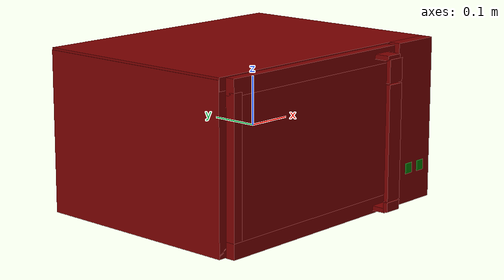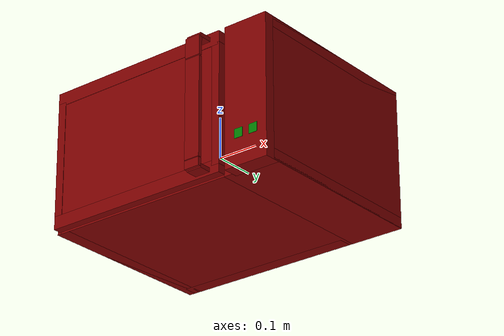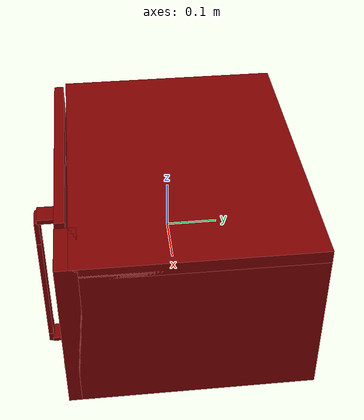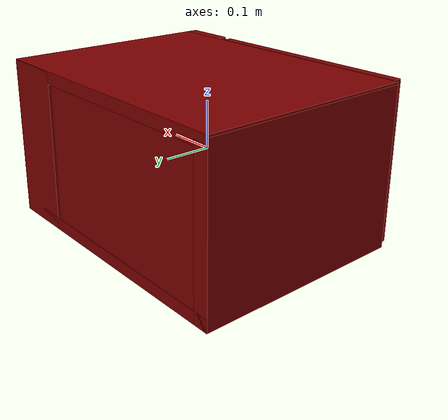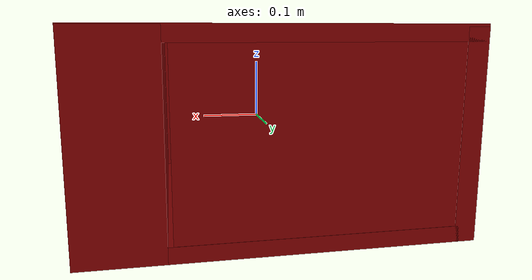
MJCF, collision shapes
<?xml version='1.0' encoding='UTF-8'?>
<mujoco model="model">
  <option timestep="0.002" gravity="0.0 0.0 -9.81"/>
  <compiler angle="radian"/>
  <asset>
    <mesh file="visuals/door.obj" name="door_vis"/>
    <mesh file="visuals/door_Clear.obj" name="door_Clear_vis"/>
    <mesh file="visuals/Body001.obj" name="Body001_vis"/>
    <mesh file="visuals/Disc001.obj" name="Disc001_vis"/>
    <texture file="visuals/T_BC001.png" name="Body001_material" type="2d"/>
    <material name="Body001_material" rgba="1 1 1 1.0" texture="Body001_material" shininess="1" specular="1"/>
    <texture file="visuals/T_BC001.png" name="door_material" type="2d"/>
    <material name="door_material" rgba="1 1 1 1.0" texture="door_material" shininess="1" specular="1"/>
    <texture file="visuals/T_BC001.png" name="door_Clear_material" type="2d"/>
    <material name="door_Clear_material" rgba="1 1 1 0.75" texture="door_Clear_material" shininess="0.2512328028678894" specular="0.3103448502657381"/>
    <texture file="visuals/T_BC001.png" name="Disc001_material" type="2d"/>
    <material name="Disc001_material" rgba="1 1 1 1.0" texture="Disc001_material" shininess="0.5" specular="0.5"/>
  </asset>
  <default>
    <default class="visual">
      <geom conaffinity="0" contype="0" group="1" type="mesh"/>
    </default>
    <default class="collision">
      <geom group="0" rgba="0.5 0 0 0.5"/>
    </default>
    <default class="spawn">
      <geom group="0" rgba="1 1 1 0.5" contype="0" conaffinity="0"/>
      <site group="0" rgba="1 1 1 0.5"/>
    </default>
    <default class="region">
      <geom group="1" conaffinity="0" contype="0" rgba="0 1 0 0"/>
    </default>
  </default>
  <worldbody>
    <body>
      <body name="object">
        <geom class="collision" type="box" pos="0.26886290 -0.22100414 -0.09540475" size="0.010876283049583435 0.0004979527438990772 0.010797453112900257" quat="1.0 0.0 0.0 0.0" name="start_button" rgba="0.0 0.5 0 0.5"/>
        <geom class="collision" type="box" pos="0.23078033 -0.22100414 -0.09497277" size="0.010778550058603287 0.0004949670983478427 0.010775938630104065" quat="1.0 0.0 0.0 0.0" name="stop_button" rgba="0.0 0.5 0 0.5"/>
        <geom class="collision" type="cylinder" pos="-0.04945516 0.01560051 -0.13233270" size="0.1811605840921402 0.0011734063737094402" quat="1.0 0.0 0.0 0.0" name="tray" rgba="0 1 0 0.5"/>
        <geom mesh="Body001_vis" type="mesh" solimp="0.998 0.998 0.001" solref="0.001 1" friction="0.95 0.3 0.1" class="visual" material="Body001_material"/>
        <geom class="collision" type="box" pos="-0.28583077 0.03089763 -0.00228121" size="0.016901511698961258 0.2250843644142151 0.16554179787635803" quat="1.0 0.0 0.0 0.0"/>
        <geom class="collision" type="box" pos="0.23694518 0.03089764 -0.00061248" size="0.06578709930181503 0.2250843644142151 0.16721045970916748" quat="1.0 0.0 0.0 0.0"/>
        <geom class="collision" type="box" pos="0.00030022 0.03089763 0.15500790" size="0.3024320602416992 0.2250843644142151 0.012815229594707489" quat="1.0 0.0 0.0 0.0"/>
        <geom class="collision" type="box" pos="0.00030022 0.03089763 -0.15489802" size="0.3024320602416992 0.2250843644142151 0.012924929149448872" quat="1.0 0.0 0.0 0.0"/>
        <geom class="collision" type="box" pos="0.24769089 -0.19889010 0.00000003" size="0.055041395127773285 0.02009808085858822 0.16782304644584656" quat="1.0 0.0 0.0 0.0"/>
        <geom class="collision" type="box" pos="-0.06188840 0.23836537 -0.00228122" size="0.016901511698961258 0.2250843644142151 0.16554179787635803" quat="0.7071068286895752 0.0 0.0 -0.7071067094802856"/>
        <body name="door">
          <joint axis="0.0 0.0 1.0" pos="-0.28924674 -0.20665190 -0.00025728" limited="true" name="microjoint" range="-1.5707963267948966 0.0" type="hinge" damping="1" frictionloss="1" armature=".01" stiffness="0.05"/>
          <geom mesh="door_vis" type="mesh" solimp="0.998 0.998 0.001" solref="0.001 1" friction="0.95 0.3 0.1" class="visual" material="door_material"/>
          <geom class="collision" type="box" pos="-0.05539873 -0.21148932 0.00030119" size="0.20943863689899445 0.0022145546972751617 0.13125666975975037" quat="1.0 0.0 0.0 0.0"/>
          <geom class="collision" type="box" pos="-0.05670168 -0.20927480 0.15091729" size="0.23352432250976562 0.00971329864114523 0.016166234388947487" quat="1.0 0.0 0.0 0.0"/>
          <geom class="collision" type="box" pos="-0.05670168 -0.20927480 -0.15110295" size="0.23352432250976562 0.00971329864114523 0.01549109909683466" quat="1.0 0.0 0.0 0.0"/>
          <geom class="collision" type="box" pos="0.16707136 -0.20927480 -0.00343810" size="0.00981630478054285 0.00971329864114523 0.14392904937267303" quat="1.0 0.0 0.0 0.0"/>
          <geom class="collision" type="box" pos="-0.27970296 -0.20927480 -0.00137535" size="0.010523008182644844 0.00971329864114523 0.14233620464801788" quat="1.0 0.0 0.0 0.0"/>
          <geom class="collision" type="box" pos="0.13395572 -0.25117895 -0.14798586" size="0.01917259767651558 0.004803053569048643 0.009773798286914825" quat="1.0 0.0 0.0 0.0"/>
          <geom class="collision" type="box" pos="0.13395570 -0.25151581 0.12639284" size="0.01917259767651558 0.00446621747687459 0.023682648316025734" quat="1.0 0.0 0.0 0.0"/>
          <geom class="collision" type="box" pos="0.13395566 -0.23338032 0.15202446" size="0.01917262002825737 0.017437011003494263 0.004819198045879602" quat="1.0 0.0 0.0 0.0"/>
          <geom class="collision" type="box" pos="0.13423698 -0.23224500 -0.15573693" size="0.01895139180123806 0.016301777213811874 0.00469950819388032" quat="1.0 0.0 0.0 0.0"/>
          <geom class="collision" type="box" pos="0.13395572 -0.25151506 -0.01817428" size="0.01917264796793461 0.0044672382064163685 0.11811789125204086" quat="1.0 0.0 0.0 0.0" name="door_handle_main"/>
          <geom class="collision" type="box" pos="-0.05539873 -0.21561125 0.00030119" size="0.22794562578201294 0.0022145546972751617 0.1607520580291748" quat="1.0 0.0 0.0 0.0" name="door_main"/>
          <body name="door_Clear">
            <geom mesh="door_Clear_vis" type="mesh" solimp="0.998 0.998 0.001" solref="0.001 1" friction="0.95 0.3 0.1" class="visual" material="door_Clear_material"/>
            <geom class="collision" type="box" pos="-0.05539873 -0.21148932 0.00030119" size="0.20943863689899445 0.0022145546972751617 0.13125666975975037" quat="1.0 0.0 0.0 0.0"/>
          </body>
        </body>
        <body name="Disc001">
          <joint axis="0.0 0.0 1.0" pos="-0.04863029 0.01558806 -0.13602901" limited="false" name="Disc001_joint" range="0 360" type="hinge" damping="1" frictionloss="1" armature=".01" stiffness="0.05"/>
          <geom mesh="Disc001_vis" type="mesh" solimp="0.998 0.998 0.001" solref="0.001 1" friction="0.95 0.3 0.1" class="visual" material="Disc001_material"/>
          <geom class="collision" type="cylinder" pos="-0.04688514 0.01612883 -0.13734661" size="0.18033765256404877 0.0026822981890290976" quat="1.0 0.0 0.0 0.0"/>
        </body>
        <geom class="region" name="reg_int" type="box" pos="-0.04836992 0.013671780000000008 0.001949270000000003" size="0.21390253999999997 0.20144119 0.1341085"/>
        <geom class="region" name="reg_main" type="box" pos="0.0 0.018496974999999985 7.500000000215667e-08" size="0.30373229 0.238485035 0.168823045"/>
      <geom class="region" name="reg_tray" type="cylinder" pos="-0.04945516 0.01560051 0.0024492381868547186" size="0.1811605840921402 0.13260853181314528"/></body>
    </body>
  </worldbody>
  <actuator>
    <motor name="microjoint_actuator" joint="microjoint" gear="10"/>
    <motor name="Disc001_joint_actuator" joint="Disc001_joint" gear="10"/>
  </actuator>
</mujoco>
